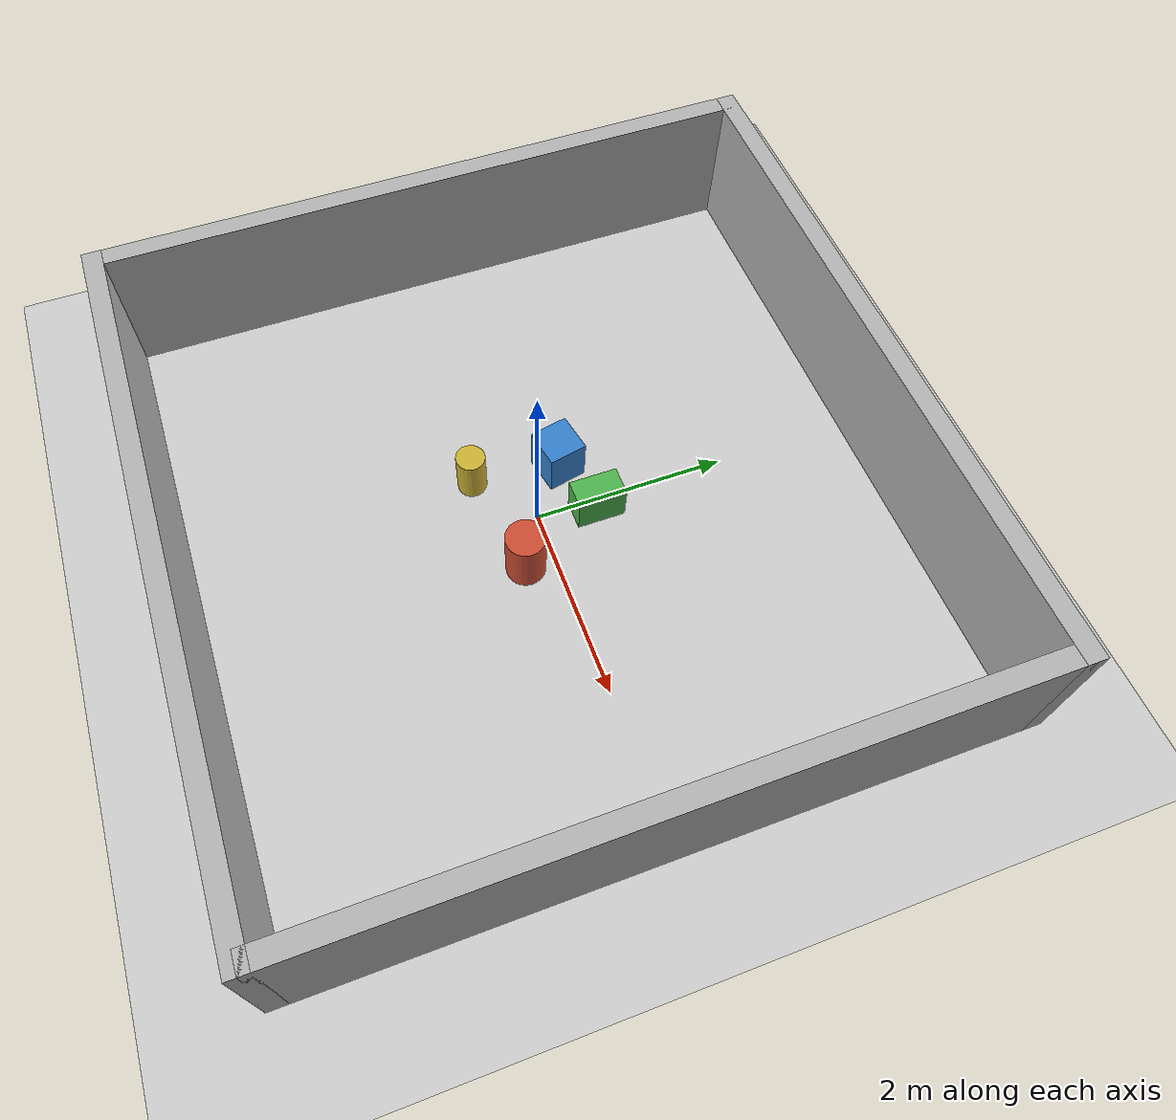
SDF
<?xml version="1.0" ?>
<sdf version="1.9">
  <world name="world_model">
    <scene>
      <shadows>0</shadows>
    </scene>
    <physics name="1ms" type="ignored">
      <max_step_size>0.001</max_step_size>
      <real_time_factor>1.0</real_time_factor>
    </physics>

    <!-- Plugins de Gazebo / Ignition -->
    <plugin
      filename="ignition-gazebo-physics-system"
      name="gz::sim::systems::Physics">
    </plugin>
    <plugin
      filename="ignition-gazebo-user-commands-system"
      name="gz::sim::systems::UserCommands">
    </plugin>
    <!-- Mantenemos ogre2 para que el sensor LiDAR (GPU Ray) funcione -->
    <plugin
      filename="libignition-gazebo-sensors-system.so"
      name="ignition::gazebo::systems::Sensors">
      <render_engine>ogre2</render_engine>
    </plugin>
    <plugin
      filename="ignition-gazebo-scene-broadcaster-system"
      name="gz::sim::systems::SceneBroadcaster">
    </plugin>
    <plugin
      filename="gz-sim-imu-system"
      name="gz::sim::systems::Imu">
    </plugin>

    <!-- Iluminación -->
    <light type="directional" name="sun">
      <cast_shadows>true</cast_shadows>
      <pose>0 0 10 0 0 0</pose>
      <diffuse>1 1 1 1</diffuse>
      <specular>0.5 0.5 0.5 1</specular>
      <attenuation>
        <range>1000</range>
        <constant>0.9</constant>
        <linear>0.01</linear>
        <quadratic>0.001</quadratic>
      </attenuation>
      <direction>-0.5 0.1 -0.9</direction>
    </light>

    <!-- Plano del suelo -->
    <model name="ground_plane">
      <static>true</static>
      <link name="link">
        <collision name="collision">
          <geometry>
            <plane>
              <normal>0 0 1</normal>
              <size>100 100</size>
            </plane>
          </geometry>
        </collision>
        <visual name="visual">
          <geometry>
            <plane>
              <normal>0 0 1</normal>
              <size>100 100</size>
            </plane>
          </geometry>
          <material>
            <ambient>0.8 0.8 0.8 1</ambient>
            <diffuse>0.8 0.8 0.8 1</diffuse>
            <specular>0.8 0.8 0.8 1</specular>
          </material>
        </visual>
      </link>
    </model>

    <!-- PAREDES DEL CUARTO (7m x 7m x 1.5m) -->
    <model name="room_walls">
      <static>true</static>

      <!-- Pared Norte -->
      <link name="wall_north">
        <pose>0 3.5 0.75 0 0 0</pose>
        <collision name="collision">
          <geometry>
            <box><size>7.2 0.2 1.5</size></box>
          </geometry>
        </collision>
        <visual name="visual">
          <geometry>
            <box><size>7.2 0.2 1.5</size></box>
          </geometry>
          <material>
            <ambient>0.7 0.7 0.7 1</ambient>
            <diffuse>0.7 0.7 0.7 1</diffuse>
          </material>
        </visual>
      </link>

      <!-- Pared Sur -->
      <link name="wall_south">
        <pose>0 -3.5 0.75 0 0 0</pose>
        <collision name="collision">
          <geometry>
            <box><size>7.2 0.2 1.5</size></box>
          </geometry>
        </collision>
        <visual name="visual">
          <geometry>
            <box><size>7.2 0.2 1.5</size></box>
          </geometry>
          <material>
            <ambient>0.7 0.7 0.7 1</ambient>
            <diffuse>0.7 0.7 0.7 1</diffuse>
          </material>
        </visual>
      </link>

      <!-- Pared Este -->
      <link name="wall_east">
        <pose>3.5 0 0.75 0 0 0</pose>
        <collision name="collision">
          <geometry>
            <box><size>0.2 7 1.5</size></box>
          </geometry>
        </collision>
        <visual name="visual">
          <geometry>
            <box><size>0.2 7 1.5</size></box>
          </geometry>
          <material>
            <ambient>0.7 0.7 0.7 1</ambient>
            <diffuse>0.7 0.7 0.7 1</diffuse>
          </material>
        </visual>
      </link>

      <!-- Pared Oeste -->
      <link name="wall_west">
        <pose>-3.5 0 0.75 0 0 0</pose>
        <collision name="collision">
          <geometry>
            <box><size>0.2 7 1.5</size></box>
          </geometry>
        </collision>
        <visual name="visual">
          <geometry>
            <box><size>0.2 7 1.5</size></box>
          </geometry>
          <material>
            <ambient>0.7 0.7 0.7 1</ambient>
            <diffuse>0.7 0.7 0.7 1</diffuse>
          </material>
        </visual>
      </link>
    </model>

    <!-- OBJETOS PEQUEÑOS EN EL CENTRO -->
    <!-- Caja central 1 -->
    <model name="center_box_1">
      <static>true</static>
      <pose>-0.5 0.4 0.25 0 0 0.2</pose>
      <link name="link">
        <collision name="collision">
          <geometry>
            <box><size>0.4 0.4 0.5</size></box>
          </geometry>
        </collision>
        <visual name="visual">
          <geometry>
            <box><size>0.4 0.4 0.5</size></box>
          </geometry>
          <material>
            <ambient>0.2 0.5 0.8 1</ambient>
            <diffuse>0.2 0.5 0.8 1</diffuse>
          </material>
        </visual>
      </link>
    </model>

    <!-- Cilindro central 1 -->
    <model name="center_cylinder_1">
      <static>true</static>
      <pose>0.5 -0.3 0.3 0 0 0</pose>
      <link name="link">
        <collision name="collision">
          <geometry>
            <cylinder>
              <radius>0.2</radius>
              <length>0.6</length>
            </cylinder>
          </geometry>
        </collision>
        <visual name="visual">
          <geometry>
            <cylinder>
              <radius>0.2</radius>
              <length>0.6</length>
            </cylinder>
          </geometry>
          <material>
            <ambient>0.8 0.3 0.2 1</ambient>
            <diffuse>0.8 0.3 0.2 1</diffuse>
          </material>
        </visual>
      </link>
    </model>

    <!-- Caja central 2 -->
    <model name="center_box_2">
      <static>true</static>
      <pose>0.1 0.6 0.2 0 0 0</pose>
      <link name="link">
        <collision name="collision">
          <geometry>
            <box><size>0.3 0.5 0.4</size></box>
          </geometry>
        </collision>
        <visual name="visual">
          <geometry>
            <box><size>0.3 0.5 0.4</size></box>
          </geometry>
          <material>
            <ambient>0.3 0.7 0.3 1</ambient>
            <diffuse>0.3 0.7 0.3 1</diffuse>
          </material>
        </visual>
      </link>
    </model>

    <!-- Cilindro central 2 -->
    <model name="center_cylinder_2">
      <static>true</static>
      <pose>-0.6 -0.5 0.25 0 0 0</pose>
      <link name="link">
        <collision name="collision">
          <geometry>
            <cylinder>
              <radius>0.15</radius>
              <length>0.5</length>
            </cylinder>
          </geometry>
        </collision>
        <visual name="visual">
          <geometry>
            <cylinder>
              <radius>0.15</radius>
              <length>0.5</length>
            </cylinder>
          </geometry>
          <material>
            <ambient>0.8 0.7 0.2 1</ambient>
            <diffuse>0.8 0.7 0.2 1</diffuse>
          </material>
        </visual>
      </link>
    </model>

  </world>
</sdf>
